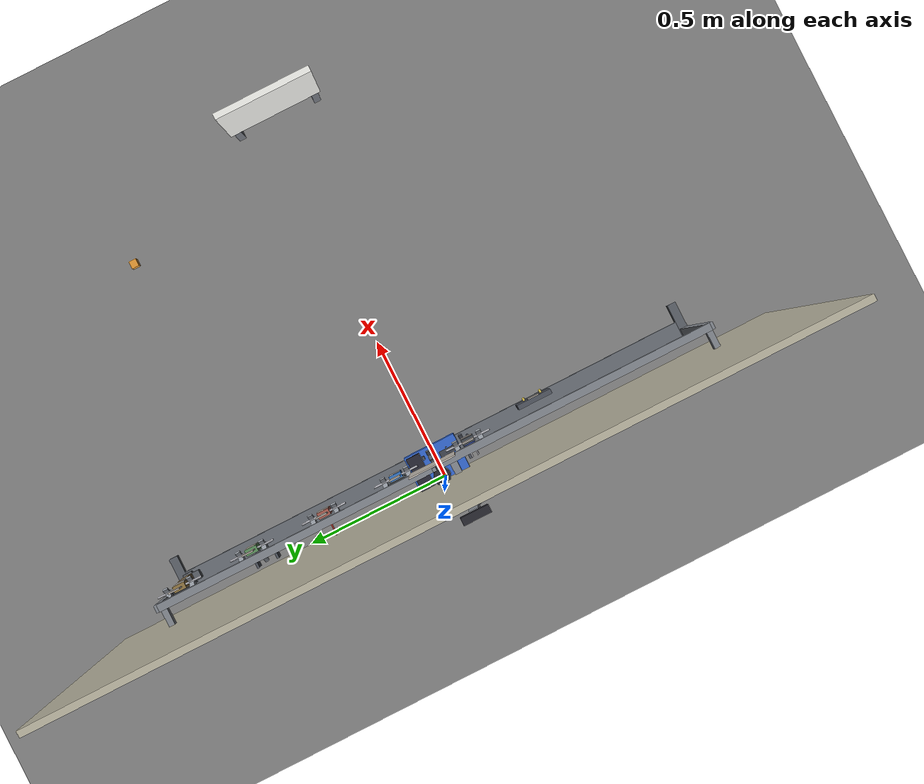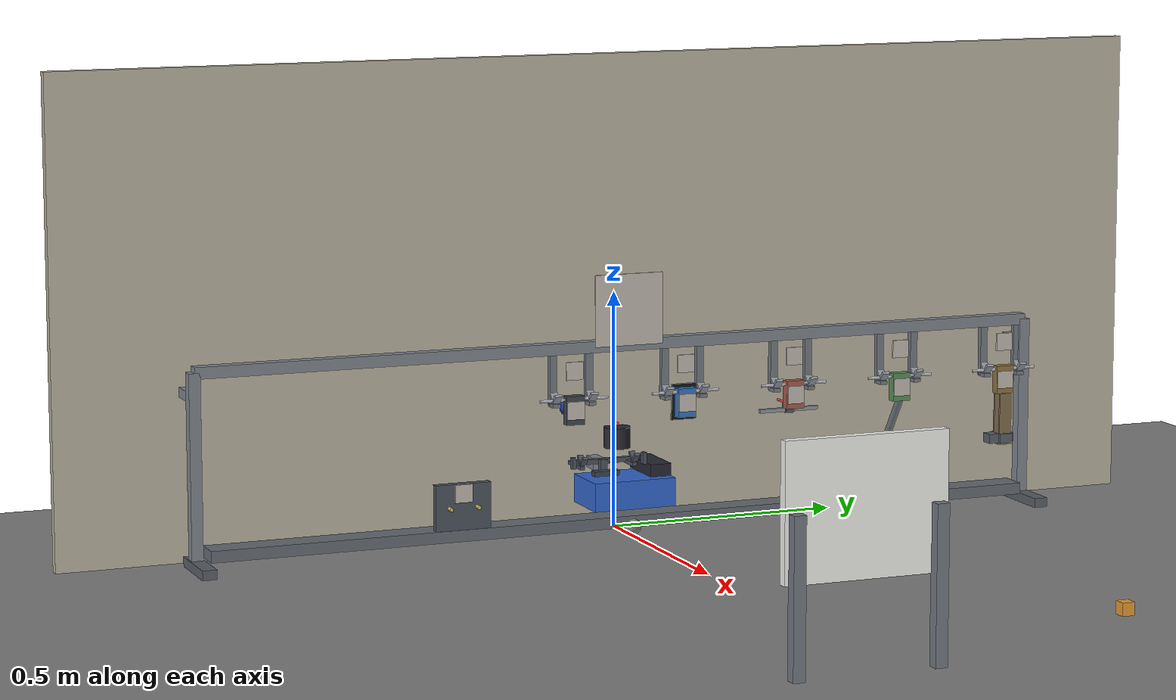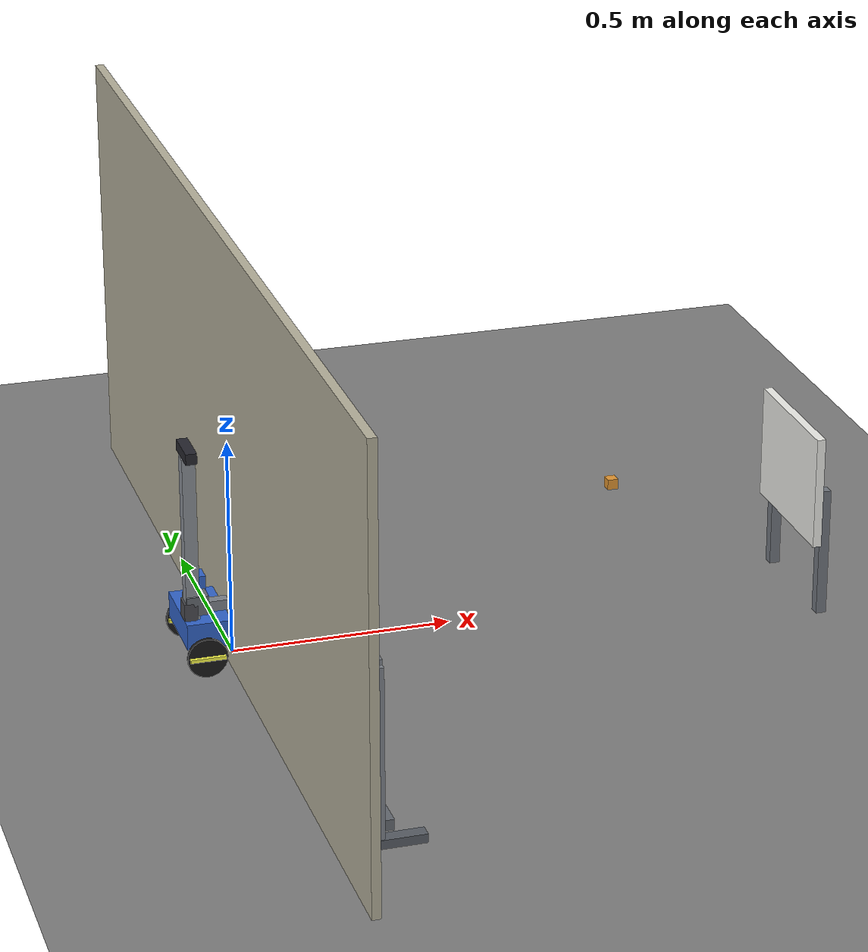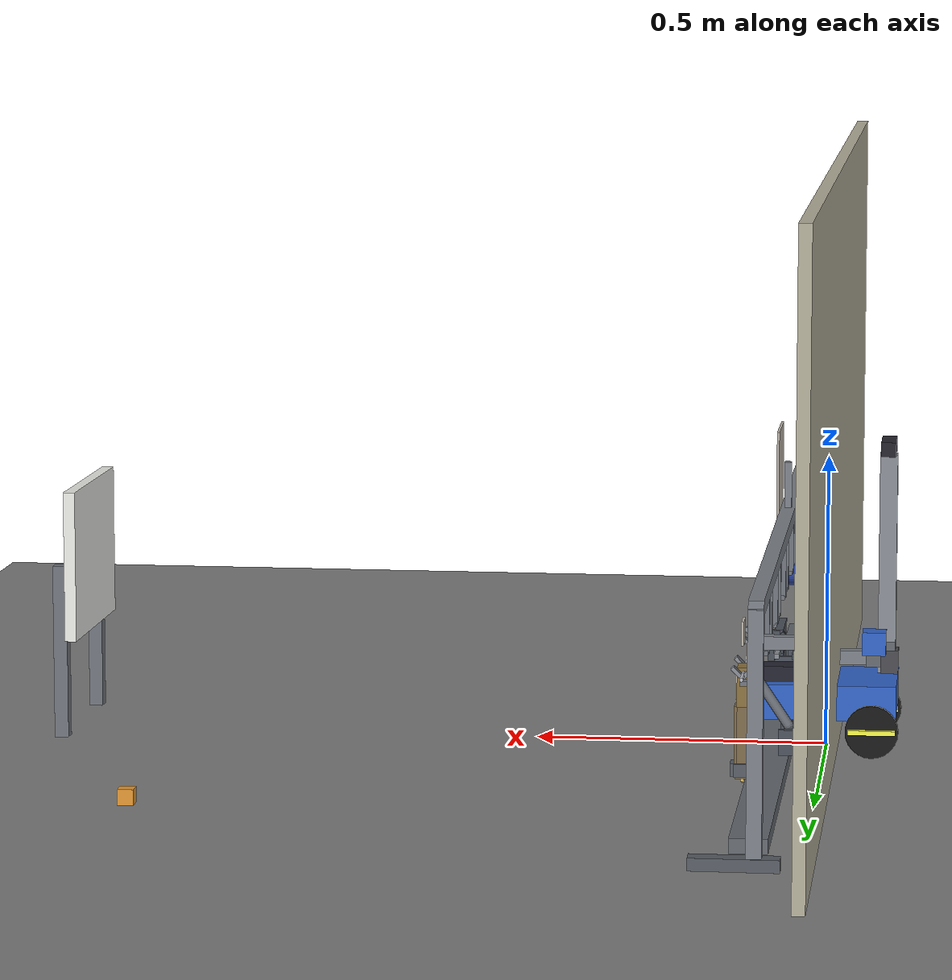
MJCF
<mujoco model="hub_world">
  <option timestep="0.001" integrator="implicitfast"/>
  <include file="pluggybot_fork.xml"/>
  <asset>
    <texture name="tagtex0" type="cube" file="tags/tag0.png"/>
    <material name="tagmat0" texture="tagtex0" specular="0.05" shininess="0.05" reflectance="0"/>
    <texture name="tagtex3" type="cube" file="tags/tag3.png"/>
    <material name="tagmat3" texture="tagtex3" specular="0.05" shininess="0.05" reflectance="0"/>
    <texture name="tagtex1" type="cube" file="tags/tag1.png"/>
    <material name="tagmat1" texture="tagtex1" specular="0.05" shininess="0.05" reflectance="0"/>
    <texture name="tagtex2" type="cube" file="tags/tag2.png"/>
    <material name="tagmat2" texture="tagtex2" specular="0.05" shininess="0.05" reflectance="0"/>
    <texture name="tagtex4" type="cube" file="tags/tag4.png"/>
    <material name="tagmat4" texture="tagtex4" specular="0.05" shininess="0.05" reflectance="0"/>
    <texture name="tagtex5" type="cube" file="tags/tag5.png"/>
    <material name="tagmat5" texture="tagtex5" specular="0.05" shininess="0.05" reflectance="0"/>
    <texture name="tagtex6" type="cube" file="tags/tag6.png"/>
    <material name="tagmat6" texture="tagtex6" specular="0.05" shininess="0.05" reflectance="0"/>
    <texture name="tagtex7" type="cube" file="tags/tag7.png"/>
    <material name="tagmat7" texture="tagtex7" specular="0.05" shininess="0.05" reflectance="0"/>
    <texture name="tagtex8" type="cube" file="tags/tag8.png"/>
    <material name="tagmat8" texture="tagtex8" specular="0.05" shininess="0.05" reflectance="0"/>
    <texture name="tagtex9" type="cube" file="tags/tag9.png"/>
    <material name="tagmat9" texture="tagtex9" specular="0.05" shininess="0.05" reflectance="0"/>
    <texture name="tagtex10" type="cube" file="tags/tag10.png"/>
    <material name="tagmat10" texture="tagtex10" specular="0.05" shininess="0.05" reflectance="0"/>
    <texture name="tagtex11" type="cube" file="tags/tag11.png"/>
    <material name="tagmat11" texture="tagtex11" specular="0.05" shininess="0.05" reflectance="0"/>
    <texture name="tagtex12" type="cube" file="tags/tag12.png"/>
    <material name="tagmat12" texture="tagtex12" specular="0.05" shininess="0.05" reflectance="0"/>
    <texture name="tagtex13" type="cube" file="tags/tag13.png"/>
    <material name="tagmat13" texture="tagtex13" specular="0.05" shininess="0.05" reflectance="0"/>
    <texture name="tagtex14" type="cube" file="tags/tag14.png"/>
    <material name="tagmat14" texture="tagtex14" specular="0.05" shininess="0.05" reflectance="0"/>
  </asset>
  <worldbody>
    <light pos="0 0 3" dir="0 0 -1"/>
    <light pos="1.5 0 1.5" dir="-0.7 0 -0.7"/>
    <geom name="floor" type="plane" size="5 5 0.1" rgba="0.5 0.5 0.5 1"/>
    <geom name="wall" type="box" size="0.01 1.2 0.5" pos="-0.01 0 0.5"
          rgba="0.72 0.70 0.62 1"/>

    <geom name="board" type="box"
          size="0.01 0.16 0.13"
          pos="1.3 -0.05 0.3" friction="0.25" priority="1"
          rgba="0.95 0.95 0.93 1"/>
    <geom name="board_leg_l" type="box" size="0.012 0.012 0.150"
          pos="1.32 0.09 0.150"
          rgba="0.45 0.47 0.50 1"/>
    <geom name="board_leg_r" type="box" size="0.012 0.012 0.150"
          pos="1.32 -0.19000000000000003 0.150"
          rgba="0.45 0.47 0.50 1"/>

    <body name="rack" pos="0.0000 0.0000 0.0000" euler="0 0 0.0">
      <freejoint/>
      <geom name="rack_post_l" type="box" size="0.012 0.012 0.200"
            pos="0.0700 0.9300 0.200"
            mass="0.15" rgba="0.50 0.52 0.55 1"/>
      <geom name="rack_post_r" type="box" size="0.012 0.012 0.200"
            pos="0.0700 -0.9300 0.200"
            mass="0.15" rgba="0.50 0.52 0.55 1"/>
      <geom name="rack_rail" type="box" size="0.012 0.930 0.012"
            pos="0.0700 0 0.400" mass="0.20"
            rgba="0.50 0.52 0.55 1"/>
      <geom name="rack_foot_l" type="box" size="0.070 0.015 0.010"
            pos="0.10 0.9300 0.010" mass="0.10" friction="1.0"
            rgba="0.35 0.37 0.40 1"/>
      <geom name="rack_foot_r" type="box" size="0.070 0.015 0.010"
            pos="0.10 -0.9300 0.010" mass="0.10" friction="1.0"
            rgba="0.35 0.37 0.40 1"/>
      <geom name="rack_shelf" type="box" size="0.030 0.910 0.012"
            pos="0.08 0 0.032" mass="1.50" rgba="0.40 0.42 0.45 1"/>
      <geom name="rack_brace_l" type="box" size="0.0350 0.010 0.010"
            pos="0.0350 0.9300 0.35" mass="0.05"
            rgba="0.50 0.52 0.55 1"/>
      <geom name="rack_brace_r" type="box" size="0.0350 0.010 0.010"
            pos="0.0350 -0.9300 0.35" mass="0.05"
            rgba="0.50 0.52 0.55 1"/>
      <geom name="rack_tag" type="box"
            size="0.002 0.0750 0.0750"
            pos="0.0840 0 0.475"
            contype="0" conaffinity="0" material="tagmat0"/>
      <geom name="rack_tag_mast" type="box" size="0.006 0.006 0.045"
            pos="0.0700 0 0.445" mass="0.02"
            rgba="0.50 0.52 0.55 1"/>
            <geom name="baya_col_l" type="box" size="0.006 0.008 0.0585" pos="0.0700 0.1650 0.3415" rgba="0.45 0.47 0.50 1"/>
      <geom name="baya_foot_l" type="box" size="0.014 0.008 0.004" pos="0.0800 0.1650 0.284" rgba="0.45 0.47 0.50 1"/>
      <geom name="baya_tray_l_a" type="box" size="0.0110 0.0080 0.0030" pos="0.0822 0.1650 0.2998" euler="0 45 0" rgba="0.55 0.57 0.60 1"/>
      <geom name="baya_tray_l_b" type="box" size="0.0110 0.0080 0.0030" pos="0.0978 0.1650 0.2998" euler="0 -45 0" rgba="0.55 0.57 0.60 1"/>
      <geom name="baya_col_r" type="box" size="0.006 0.008 0.0585" pos="0.0700 0.0850 0.3415" rgba="0.45 0.47 0.50 1"/>
      <geom name="baya_foot_r" type="box" size="0.014 0.008 0.004" pos="0.0800 0.0850 0.284" rgba="0.45 0.47 0.50 1"/>
      <geom name="baya_tray_r_a" type="box" size="0.0110 0.0080 0.0030" pos="0.0822 0.0850 0.2998" euler="0 45 0" rgba="0.55 0.57 0.60 1"/>
      <geom name="baya_tray_r_b" type="box" size="0.0110 0.0080 0.0030" pos="0.0978 0.0850 0.2998" euler="0 -45 0" rgba="0.55 0.57 0.60 1"/>
      <geom name="baya_bay_tag" type="box" size="0.002 0.0187 0.0187" pos="0.0920 0.1250 0.3550" contype="0" conaffinity="0" material="tagmat1"/>
      <geom name="bayb_col_l" type="box" size="0.006 0.008 0.0585" pos="0.0700 -0.0850 0.3415" rgba="0.45 0.47 0.50 1"/>
      <geom name="bayb_foot_l" type="box" size="0.014 0.008 0.004" pos="0.0800 -0.0850 0.284" rgba="0.45 0.47 0.50 1"/>
      <geom name="bayb_tray_l_a" type="box" size="0.0110 0.0080 0.0030" pos="0.0822 -0.0850 0.2998" euler="0 45 0" rgba="0.55 0.57 0.60 1"/>
      <geom name="bayb_tray_l_b" type="box" size="0.0110 0.0080 0.0030" pos="0.0978 -0.0850 0.2998" euler="0 -45 0" rgba="0.55 0.57 0.60 1"/>
      <geom name="bayb_col_r" type="box" size="0.006 0.008 0.0585" pos="0.0700 -0.1650 0.3415" rgba="0.45 0.47 0.50 1"/>
      <geom name="bayb_foot_r" type="box" size="0.014 0.008 0.004" pos="0.0800 -0.1650 0.284" rgba="0.45 0.47 0.50 1"/>
      <geom name="bayb_tray_r_a" type="box" size="0.0110 0.0080 0.0030" pos="0.0822 -0.1650 0.2998" euler="0 45 0" rgba="0.55 0.57 0.60 1"/>
      <geom name="bayb_tray_r_b" type="box" size="0.0110 0.0080 0.0030" pos="0.0978 -0.1650 0.2998" euler="0 -45 0" rgba="0.55 0.57 0.60 1"/>
      <geom name="bayb_bay_tag" type="box" size="0.002 0.0187 0.0187" pos="0.0920 -0.1250 0.3550" contype="0" conaffinity="0" material="tagmat2"/>
      <geom name="bayc_col_l" type="box" size="0.006 0.008 0.0585" pos="0.0700 0.4150 0.3415" rgba="0.45 0.47 0.50 1"/>
      <geom name="bayc_foot_l" type="box" size="0.014 0.008 0.004" pos="0.0800 0.4150 0.284" rgba="0.45 0.47 0.50 1"/>
      <geom name="bayc_tray_l_a" type="box" size="0.0110 0.0080 0.0030" pos="0.0822 0.4150 0.2998" euler="0 45 0" rgba="0.55 0.57 0.60 1"/>
      <geom name="bayc_tray_l_b" type="box" size="0.0110 0.0080 0.0030" pos="0.0978 0.4150 0.2998" euler="0 -45 0" rgba="0.55 0.57 0.60 1"/>
      <geom name="bayc_col_r" type="box" size="0.006 0.008 0.0585" pos="0.0700 0.3350 0.3415" rgba="0.45 0.47 0.50 1"/>
      <geom name="bayc_foot_r" type="box" size="0.014 0.008 0.004" pos="0.0800 0.3350 0.284" rgba="0.45 0.47 0.50 1"/>
      <geom name="bayc_tray_r_a" type="box" size="0.0110 0.0080 0.0030" pos="0.0822 0.3350 0.2998" euler="0 45 0" rgba="0.55 0.57 0.60 1"/>
      <geom name="bayc_tray_r_b" type="box" size="0.0110 0.0080 0.0030" pos="0.0978 0.3350 0.2998" euler="0 -45 0" rgba="0.55 0.57 0.60 1"/>
      <geom name="bayc_bay_tag" type="box" size="0.002 0.0187 0.0187" pos="0.0920 0.3750 0.3550" contype="0" conaffinity="0" material="tagmat4"/>
      <geom name="bayd_col_l" type="box" size="0.006 0.008 0.0585" pos="0.0700 0.6650 0.3415" rgba="0.45 0.47 0.50 1"/>
      <geom name="bayd_foot_l" type="box" size="0.014 0.008 0.004" pos="0.0800 0.6650 0.284" rgba="0.45 0.47 0.50 1"/>
      <geom name="bayd_tray_l_a" type="box" size="0.0110 0.0080 0.0030" pos="0.0822 0.6650 0.2998" euler="0 45 0" rgba="0.55 0.57 0.60 1"/>
      <geom name="bayd_tray_l_b" type="box" size="0.0110 0.0080 0.0030" pos="0.0978 0.6650 0.2998" euler="0 -45 0" rgba="0.55 0.57 0.60 1"/>
      <geom name="bayd_col_r" type="box" size="0.006 0.008 0.0585" pos="0.0700 0.5850 0.3415" rgba="0.45 0.47 0.50 1"/>
      <geom name="bayd_foot_r" type="box" size="0.014 0.008 0.004" pos="0.0800 0.5850 0.284" rgba="0.45 0.47 0.50 1"/>
      <geom name="bayd_tray_r_a" type="box" size="0.0110 0.0080 0.0030" pos="0.0822 0.5850 0.2998" euler="0 45 0" rgba="0.55 0.57 0.60 1"/>
      <geom name="bayd_tray_r_b" type="box" size="0.0110 0.0080 0.0030" pos="0.0978 0.5850 0.2998" euler="0 -45 0" rgba="0.55 0.57 0.60 1"/>
      <geom name="bayd_bay_tag" type="box" size="0.002 0.0187 0.0187" pos="0.0920 0.6250 0.3550" contype="0" conaffinity="0" material="tagmat5"/>
      <geom name="baye_col_l" type="box" size="0.006 0.008 0.0585" pos="0.0700 0.9150 0.3415" rgba="0.45 0.47 0.50 1"/>
      <geom name="baye_foot_l" type="box" size="0.014 0.008 0.004" pos="0.0800 0.9150 0.284" rgba="0.45 0.47 0.50 1"/>
      <geom name="baye_tray_l_a" type="box" size="0.0110 0.0080 0.0030" pos="0.0822 0.9150 0.2998" euler="0 45 0" rgba="0.55 0.57 0.60 1"/>
      <geom name="baye_tray_l_b" type="box" size="0.0110 0.0080 0.0030" pos="0.0978 0.9150 0.2998" euler="0 -45 0" rgba="0.55 0.57 0.60 1"/>
      <geom name="baye_col_r" type="box" size="0.006 0.008 0.0585" pos="0.0700 0.8350 0.3415" rgba="0.45 0.47 0.50 1"/>
      <geom name="baye_foot_r" type="box" size="0.014 0.008 0.004" pos="0.0800 0.8350 0.284" rgba="0.45 0.47 0.50 1"/>
      <geom name="baye_tray_r_a" type="box" size="0.0110 0.0080 0.0030" pos="0.0822 0.8350 0.2998" euler="0 45 0" rgba="0.55 0.57 0.60 1"/>
      <geom name="baye_tray_r_b" type="box" size="0.0110 0.0080 0.0030" pos="0.0978 0.8350 0.2998" euler="0 -45 0" rgba="0.55 0.57 0.60 1"/>
      <geom name="baye_bay_tag" type="box" size="0.002 0.0187 0.0187" pos="0.0920 0.8750 0.3550" contype="0" conaffinity="0" material="tagmat6"/>
      <!-- charge bay: panel + two pogo pins at bumper height + its own tag
           (the terminal servo needs a mark here like anywhere else) -->
      <geom name="rack_charge_panel" type="box" size="0.008 0.06 0.05"
            pos="0.10 -0.3750 0.090" mass="0.10"
            rgba="0.30 0.32 0.36 1"/>
      <geom name="rack_charge_tag" type="box"
            size="0.002 0.0187 0.0187"
            pos="0.109 -0.3750 0.120"
            contype="0" conaffinity="0" material="tagmat3"/>
      <geom name="rack_pin_l" type="cylinder" size="0.004 0.006" zaxis="1 0 0"
            pos="0.114 -0.3450 0.090" mass="0.005"
            rgba="0.85 0.75 0.30 1"/>
      <geom name="rack_pin_r" type="cylinder" size="0.004 0.006" zaxis="1 0 0"
            pos="0.114 -0.4050 0.090" mass="0.005"
            rgba="0.85 0.75 0.30 1"/>
    </body>

    <body name="module_lcd" pos="0.0900 0.1250 0.2730" euler="0 0 0.0">
      <freejoint/>
      <geom name="module_lcd_body" type="box"
            size="0.01 0.02 0.03"
            mass="0.100" rgba="0.20 0.45 0.75 1"/>
      <geom name="module_lcd_peg_l" type="cylinder" size="0.003 0.0315" zaxis="0 1 0" pos="0 0.0435 0.0220" mass="0.008" friction="0.4" priority="1" rgba="0.75 0.75 0.78 1"/>
      <geom name="module_lcd_peg_r" type="cylinder" size="0.003 0.0315" zaxis="0 1 0" pos="0 -0.0435 0.0220" mass="0.008" friction="0.4" priority="1" rgba="0.75 0.75 0.78 1"/>
      <geom name="module_lcd_peg_insul" type="cylinder" size="0.003 0.0120" zaxis="0 1 0" pos="0 0 0.0220" mass="0.004" rgba="0.12 0.12 0.14 1"/>
      <geom name="module_lcd_screen" type="box" size="0.002 0.028 0.038" pos="-0.0100 0 0" contype="0" conaffinity="0" rgba="0.05 0.08 0.10 1"/>
      <geom name="module_lcd_tag" type="box" size="0.002 0.0187 0.0187" pos="0.0100 0 0" contype="0" conaffinity="0" material="tagmat10"/>
    </body>

    <body name="module_plug" pos="0.0900 -0.1250 0.2730" euler="0 0 0.0">
      <freejoint/>
      <geom name="module_plug_body" type="box"
            size="0.01 0.02 0.03"
            mass="0.100" rgba="0.25 0.27 0.30 1"/>
      <geom name="module_plug_peg_l" type="cylinder" size="0.003 0.0315" zaxis="0 1 0" pos="0 0.0435 0.0220" mass="0.008" friction="0.4" priority="1" rgba="0.75 0.75 0.78 1"/>
      <geom name="module_plug_peg_r" type="cylinder" size="0.003 0.0315" zaxis="0 1 0" pos="0 -0.0435 0.0220" mass="0.008" friction="0.4" priority="1" rgba="0.75 0.75 0.78 1"/>
      <geom name="module_plug_peg_insul" type="cylinder" size="0.003 0.0120" zaxis="0 1 0" pos="0 0 0.0220" mass="0.004" rgba="0.12 0.12 0.14 1"/>
      <geom name="module_plug_barrel" type="cylinder" size="0.01775 0.015" zaxis="1 0 0" pos="-0.0230 0 0" contype="0" conaffinity="0" rgba="0.15 0.25 0.6 1"/>
      <geom name="module_plug_pin_l" type="capsule" size="0.0024" fromto="-0.0380 0.0095 0 -0.0540 0.0095 0" contype="0" conaffinity="0" rgba="0.75 0.75 0.78 1"/>
      <geom name="module_plug_pin_r" type="capsule" size="0.0024" fromto="-0.0380 -0.0095 0 -0.0540 -0.0095 0" contype="0" conaffinity="0" rgba="0.75 0.75 0.78 1"/>
      <geom name="module_plug_tag" type="box" size="0.002 0.0187 0.0187" pos="0.0100 0 0" contype="0" conaffinity="0" material="tagmat11"/>
    </body>

    <body name="module_pen" pos="0.0900 0.3750 0.2730" euler="0 0 0.0">
      <freejoint/>
      <geom name="module_pen_body" type="box"
            size="0.01 0.02 0.03"
            mass="0.100" rgba="0.65 0.35 0.30 1"/>
      <geom name="module_pen_peg_l" type="cylinder" size="0.003 0.0315" zaxis="0 1 0" pos="0 0.0435 0.0220" mass="0.008" friction="0.4" priority="1" rgba="0.75 0.75 0.78 1"/>
      <geom name="module_pen_peg_r" type="cylinder" size="0.003 0.0315" zaxis="0 1 0" pos="0 -0.0435 0.0220" mass="0.008" friction="0.4" priority="1" rgba="0.75 0.75 0.78 1"/>
      <geom name="module_pen_peg_insul" type="cylinder" size="0.003 0.0120" zaxis="0 1 0" pos="0 0 0.0220" mass="0.004" rgba="0.12 0.12 0.14 1"/>
      <geom name="module_pen_rail" type="box" size="0.004 0.0670 0.004" pos="-0.0260 0 -0.0370" mass="0.02" rgba="0.55 0.57 0.60 1"/>
      <geom name="module_pen_tag" type="box" size="0.002 0.0187 0.0187" pos="0.0100 0 0" contype="0" conaffinity="0" material="tagmat12"/>
      <body name="module_pen_carriage" pos="-0.0260 0 -0.0370">
        <joint name="pen_carriage_joint" type="slide" axis="0 1 0" range="-0.0550 0.0550" damping="2"/>
        <geom name="module_pen_block" type="box" size="0.008 0.010 0.0110" pos="0 0 0.0050" mass="0.03" rgba="0.30 0.32 0.36 1"/>
        <body name="module_pen_quill" pos="0 0 0.0120">
          <joint name="pen_quill_joint" type="slide" axis="1 0 0" range="0 0.0200" stiffness="60.0" damping="2" armature="1e-6"/>
          <geom name="module_pen_shaft" type="capsule" size="0.0025" fromto="-0.008 0 0 -0.0530 0 0" mass="0.006" friction="0.25" priority="1" solimp="0.99 0.999 0.0001" rgba="0.90 0.30 0.25 1"/>
          <site name="pen_tip" pos="-0.0530 0 0" size="0.002" rgba="0.9 0.3 0.25 1"/>
        </body>
      </body>
    </body>

    <body name="module_claw" pos="0.0900 0.6250 0.2730" euler="0 0 0.0">
      <freejoint/>
      <geom name="module_claw_body" type="box"
            size="0.01 0.02 0.03"
            mass="0.100" rgba="0.35 0.55 0.35 1"/>
      <geom name="module_claw_peg_l" type="cylinder" size="0.003 0.0315" zaxis="0 1 0" pos="0 0.0435 0.0220" mass="0.008" friction="0.4" priority="1" rgba="0.75 0.75 0.78 1"/>
      <geom name="module_claw_peg_r" type="cylinder" size="0.003 0.0315" zaxis="0 1 0" pos="0 -0.0435 0.0220" mass="0.008" friction="0.4" priority="1" rgba="0.75 0.75 0.78 1"/>
      <geom name="module_claw_peg_insul" type="cylinder" size="0.003 0.0120" zaxis="0 1 0" pos="0 0 0.0220" mass="0.004" rgba="0.12 0.12 0.14 1"/>
      <geom name="module_claw_pendant" type="capsule" size="0.008" fromto="0 0 -0.0300 -0.0550 0 -0.1120" mass="0.045" rgba="0.45 0.47 0.50 1"/>
      <camera name="claw_eye" pos="-0.0330 0.0300 -0.0790" xyaxes="-0.8064 0.5914 0.0000 -0.4840 -0.6600 0.5745" fovy="58"/>
      <geom name="module_claw_tag" type="box" size="0.002 0.0187 0.0187" pos="0.0100 0 0" contype="0" conaffinity="0" material="tagmat13"/>
      <body name="module_claw_jaw_l" pos="-0.0550 0.0350 -0.1320">
        <joint name="claw_l" type="slide" axis="0 1 0" range="-0.0270 0" damping="1"/>
        <geom name="module_claw_pad_l" type="box" size="0.014 0.004 0.0200" mass="0.020" friction="1.5" priority="1" solimp="0.99 0.999 0.0001" rgba="0.30 0.32 0.36 1"/>
      </body>
      <body name="module_claw_jaw_r" pos="-0.0550 -0.0350 -0.1320">
        <joint name="claw_r" type="slide" axis="0 -1 0" range="-0.0270 0" damping="1"/>
        <geom name="module_claw_pad_r" type="box" size="0.014 0.004 0.0200" mass="0.020" friction="1.5" priority="1" solimp="0.99 0.999 0.0001" rgba="0.30 0.32 0.36 1"/>
      </body>
      <site name="claw_grip" pos="-0.0550 0 -0.1320" size="0.003" rgba="0.9 0.6 0.2 1"/>
    </body>

    <body name="module_seed" pos="0.0900 0.8750 0.2730" euler="0 0 0.0">
      <freejoint/>
      <geom name="module_seed_body" type="box"
            size="0.01 0.02 0.03"
            mass="0.100" rgba="0.55 0.45 0.25 1"/>
      <geom name="module_seed_peg_l" type="cylinder" size="0.003 0.0315" zaxis="0 1 0" pos="0 0.0435 0.0220" mass="0.008" friction="0.4" priority="1" rgba="0.75 0.75 0.78 1"/>
      <geom name="module_seed_peg_r" type="cylinder" size="0.003 0.0315" zaxis="0 1 0" pos="0 -0.0435 0.0220" mass="0.008" friction="0.4" priority="1" rgba="0.75 0.75 0.78 1"/>
      <geom name="module_seed_peg_insul" type="cylinder" size="0.003 0.0120" zaxis="0 1 0" pos="0 0 0.0220" mass="0.004" rgba="0.12 0.12 0.14 1"/>
      <geom name="module_seed_tag" type="box" size="0.002 0.0187 0.0187" pos="0.0100 0 0" contype="0" conaffinity="0" material="tagmat14"/>
      <geom name="module_seed_tube_px" type="box" size="0.0020 0.0140 0.0440" pos="0.0120 0.0000 -0.0740" mass="0.008" rgba="0.50 0.42 0.30 1"/>
      <geom name="module_seed_tube_nx" type="box" size="0.0020 0.0140 0.0440" pos="-0.0120 0.0000 -0.0740" mass="0.008" rgba="0.50 0.42 0.30 1"/>
      <geom name="module_seed_tube_py" type="box" size="0.0100 0.0020 0.0440" pos="0.0000 0.0120 -0.0740" mass="0.008" rgba="0.50 0.42 0.30 1"/>
      <geom name="module_seed_tube_ny" type="box" size="0.0100 0.0020 0.0440" pos="0.0000 -0.0120 -0.0740" mass="0.008" rgba="0.50 0.42 0.30 1"/>
      <geom name="module_seed_shelf" type="box" size="0.0120 0.0130 0.0020" pos="0 -0.0010 -0.1405" mass="0.006" friction="0.3" priority="1" rgba="0.50 0.42 0.30 1"/>
      <site name="seed_outlet" pos="0 0.0220 -0.1425" size="0.003" rgba="0.85 0.72 0.35 1"/>
      <body name="module_seed_shuttle" pos="0 0 -0.1280">
        <joint name="seed_gate_joint" type="slide" axis="0 1 0" range="0 0.0240" damping="1"/>
        <geom name="module_seed_blank" type="box" size="0.0140 0.0140 0.0100" pos="0 -0.0240 0" mass="0.010" rgba="0.35 0.37 0.40 1"/>
        <geom name="module_seed_pocket_py" type="box" size="0.0140 0.0050 0.0100" pos="0.0000 0.0150 0" mass="0.004" rgba="0.35 0.37 0.40 1"/>
        <geom name="module_seed_pocket_px" type="box" size="0.0050 0.0150 0.0100" pos="0.0150 0.0000 0" mass="0.004" rgba="0.35 0.37 0.40 1"/>
        <geom name="module_seed_pocket_nx" type="box" size="0.0050 0.0150 0.0100" pos="-0.0150 0.0000 0" mass="0.004" rgba="0.35 0.37 0.40 1"/>
      </body>
    </body>

    <body name="seed_0" pos="0.0900 0.8750 0.1440">
      <freejoint/>
      <geom name="seed_0_body" type="sphere" size="0.008" mass="0.004" condim="6" friction="0.9 0.02 0.005" priority="1" rgba="0.85 0.72 0.35 1"/>
    </body>
    <body name="seed_1" pos="0.0900 0.8750 0.1610">
      <freejoint/>
      <geom name="seed_1_body" type="sphere" size="0.008" mass="0.004" condim="6" friction="0.9 0.02 0.005" priority="1" rgba="0.85 0.72 0.35 1"/>
    </body>
    <body name="seed_2" pos="0.0900 0.8750 0.1780">
      <freejoint/>
      <geom name="seed_2_body" type="sphere" size="0.008" mass="0.004" condim="6" friction="0.9 0.02 0.005" priority="1" rgba="0.85 0.72 0.35 1"/>
    </body>

    <!-- Something to pick up. A 26 mm, 60 g block on open floor: small enough
         for a 70 mm jaw span, heavy enough that dropping it is visible. -->
    <body name="pickup" pos="1.10 0.60 0.013">
      <freejoint/>
      <geom name="pickup_box" type="box" size="0.013 0.013 0.013" mass="0.06"
            friction="1.2" rgba="0.90 0.60 0.20 1"/>
    </body>
    <camera name="hub_watch" pos="0.85 -0.85 0.70"
            xyaxes="0.707 0.707 0 -0.32 0.32 0.89"/>
  </worldbody>
  <actuator>
    <position name="pen_carriage" joint="pen_carriage_joint" kp="2000" kv="80" ctrlrange="-0.0550 0.0550" forcerange="-15 15"/>
    <position name="claw_l" joint="claw_l" kp="600.0" kv="6" ctrlrange="-0.0270 0" forcerange="-20 20"/>
    <position name="claw_r" joint="claw_r" kp="600.0" kv="6" ctrlrange="-0.0270 0" forcerange="-20 20"/>
    <position name="seed_gate" joint="seed_gate_joint" kp="800.0" kv="12" ctrlrange="0 0.0240" forcerange="-20 20"/>
  </actuator>
</mujoco>

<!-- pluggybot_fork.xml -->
<mujocoinclude>
  <visual>
    <global offwidth="1280" offheight="720"/>
    <quality offsamples="0"/>
  </visual>

  <worldbody>

    <!-- origin at axle height (aka wheel radius) -->
    <body name="pluggybot" pos="0 0 0.045">
      <freejoint />

      <!-- For the gyroscope  -->
      <site name="imu" pos="0 0 0.05"/>

      <geom
        name="chassis"
        type="box"
        size="0.12 0.09 0.03"
        pos="0 0 0.045"
        mass="0.9"
        rgba="0.2 0.4 0.8 1"
      />

      <geom
        name="battery"
        type="box"
        size="0.065 0.023 0.013"
        pos="0.05 0.06 0.092"
        mass="0.40"
        rgba="0.15 0.15 0.2 1"
      />

      <!--  Head  -->
      <body name="head" pos="-0.08 0 0.135">
        <geom
          name="head_mount"
          type="box"
          size="0.02 0.02 0.02"
          pos="0 0 0"
          mass="0.12"
          rgba="0.2 0.4 0.8 1"
        />

        <!--  Cameras  -->
        <!--  Decoding xyaxes="0 -1 0  0 0 1":
                image-right is body −y, image-up is body +z,
                which forces the viewing direction to be body +x
        -->
        <camera name="left_eye" pos="0.03 0.03 0" xyaxes="0 -1 0 0 0 1" fovy="41"/>

      </body>

      <geom name="lidar_body" type="cylinder" size="0.028 0.022"
            pos="0.02 0 0.150" mass="0.11" rgba="0.15 0.15 0.18 1"/>
      <site name="lidar" pos="0.02 0 0.178" size="0.004"
            rgba="0.9 0.2 0.2 1"/>

      <body name="left_wheel" pos="-0.08 0.105 0">
        <joint
          name="left_wheel_joint"
          type="hinge"
          axis="0 1 0"
          armature="0.012"
          damping="0.05"
          frictionloss="0.05"
        />
        <geom
          name="left_tire"
          type="cylinder"
          size="0.045 0.005"
          zaxis="0 1 0"
          mass="0.05"
          rgba="0.1 0.1 0.1 1"
        />
        <!-- Spoke - purely visual, to see rotation  -->
        <geom
          type="box"
          size="0.04 0.013 0.004"
          mass="0.001"
          contype="0"
          conaffinity="0"
          rgba="1 1 0.3 1"
        />
      </body>

      <body name="right_wheel" pos="-0.08 -0.105 0">
        <joint
          name="right_wheel_joint"
          type="hinge"
          axis="0 1 0"
          armature="0.012"
          damping="0.05"
          frictionloss="0.05"
        />
        <!-- frictionloss: the parking brake -- see left_wheel_joint. -->
        <geom
          name="right_tire"
          type="cylinder"
          size="0.045 0.005"
          zaxis="0 1 0"
          mass="0.05"
          rgba="0.1 0.1 0.1 1"
        />
        <!-- Spoke - purely visual, to see rotation  -->
        <geom
          type="box"
          size="0.04 0.013 0.004"
          mass="0.001"
          contype="0"
          conaffinity="0"
          rgba="1 1 0.3 1"
        />
      </body>

      <geom
        name="caster"
        type="sphere"
        size="0.02"
        pos="0.10 0 -0.025"
        mass="0.02"
        condim="1"
        priority="1"
      />

      <!-- Mast: fixed column + lift motor block at its foot (igus NEMA11
           lead-screw class). Column top at body-local z=0.455. TBD masses. -->
      <geom name="mast" type="box" size="0.015 0.015 0.19"
            pos="-0.10 -0.05 0.265" mass="0.20" rgba="0.55 0.57 0.6 1"/>
      <geom name="lift_motor" type="box" size="0.015 0.02 0.02"
            pos="-0.105 -0.05 0.095" mass="0.15" rgba="0.3 0.3 0.32 1"/>

      <geom name="depth_cam_body" type="box" size="0.0125 0.045 0.0125"
            pos="-0.10 -0.05 0.4675" mass="0.072" rgba="0.15 0.15 0.18 1"/>
      <camera name="depth_eye" pos="-0.086 -0.05 0.4675"
              xyaxes="0 -1 0  0.6428 0 0.7660" fovy="58"/>

      <body name="carriage" pos="-0.10 -0.05 0.10">
        <joint name="lift_joint" type="slide" axis="0 0 1" range="0 0.31"
               damping="10"/>
        <geom name="carriage_block" type="box" size="0.025 0.02 0.022"
              pos="0.01 0 0.008" mass="0.25" rgba="0.4 0.42 0.45 1"/>

        <camera name="dock_eye" pos="0.03 0 0.06" xyaxes="0 -1 0 0 0 1" fovy="41"/>

        <!-- Telescoping arm: short tube, 0.20 m stroke. Retracted, the plug
             tip sits at body-local +0.059 — safely behind the +0.12 bumper. -->
        <body name="arm" pos="0 0 0">
          <joint name="arm_joint" type="slide" axis="1 0 0" range="0 0.20"
                 damping="5"/>
          <geom name="arm_tube" type="box" size="0.06 0.012 0.012"
                pos="0.08 0 0" mass="0.12" rgba="0.5 0.52 0.55 1"/>

          <body name="tool_fork" pos="0.14 0 0.019" euler="0 0 180">
            <joint name="fork_lat_y" type="slide" axis="0 1 0" range="-0.02 0.02"
                   stiffness="150" damping="4" armature="1e-5"/>
            <joint name="fork_lat_z" type="slide" axis="0 0 1" range="-0.02 0.02"
                   stiffness="150" damping="4" armature="1e-5"/>
            <joint name="fork_rot_z" type="hinge" axis="0 0 1" range="-0.35 0.35"
                   stiffness="1.0" damping="0.05" armature="1e-5"/>
            <joint name="fork_rot_y" type="hinge" axis="0 1 0" range="-0.35 0.35"
                   stiffness="1.0" damping="0.05" armature="1e-5"/>
            <geom name="fork_bridge" type="box" size="0.006 0.064 0.005"
                  pos="-0.014 0 -0.010" mass="0.020" rgba="0.30 0.32 0.36 1"/>
            <geom name="fork_prong_l" type="box" size="0.035 0.005 0.004"
                  pos="-0.020 0.058 -0.014" mass="0.008" rgba="0.30 0.32 0.36 1"/>
            <geom name="fork_prong_r" type="box" size="0.035 0.005 0.004"
                  pos="-0.020 -0.058 -0.014" mass="0.008" rgba="0.30 0.32 0.36 1"/>
            <geom name="fork_vl_a" type="box" size="0.011 0.006 0.003"
                  pos="-0.0628 0.058 0.0018" euler="0 45 0" mass="0.002"
                  rgba="0.30 0.32 0.36 1"/>
            <geom name="fork_vl_b" type="box" size="0.011 0.006 0.003"
                  pos="-0.0472 0.058 0.0018" euler="0 -45 0" mass="0.002"
                  rgba="0.30 0.32 0.36 1"/>
            <geom name="fork_vr_a" type="box" size="0.011 0.006 0.003"
                  pos="-0.0628 -0.058 0.0018" euler="0 45 0" mass="0.002"
                  rgba="0.30 0.32 0.36 1"/>
            <geom name="fork_vr_b" type="box" size="0.011 0.006 0.003"
                  pos="-0.0472 -0.058 0.0018" euler="0 -45 0" mass="0.002"
                  rgba="0.30 0.32 0.36 1"/>
            <geom name="fork_stop_l" type="box" size="0.006 0.004 0.012"
                  pos="-0.055 0.079 -0.002" mass="0.004" rgba="0.30 0.32 0.36 1"/>
            <geom name="fork_stop_r" type="box" size="0.006 0.004 0.012"
                  pos="-0.055 -0.079 -0.002" mass="0.004" rgba="0.30 0.32 0.36 1"/>
                 Depth is bounded by the PARKED envelope, not by what the
                 lever would like. Arm retracted, the fork tucks over the
                 chassis, and there is only ~60 mm between the chassis top
                 (0.12) and the scanner's centre row (0.18) -- a first
                 version reaching to z=-0.056 sat its bracket ON the chassis
                 and jacked the whole fork up into the scan row. So the pad
                 stops at z=-0.036 (a ~29 mm lever below the peg) and the
                 bracket routes BEHIND the module rather than under it.

                 29 mm is also near the floor of what works, for a reason
                 worth writing down: the pad force is (tool torque / lever),
                 and it is reacted at the peg, which sits in a 45-degree V.
                 Push the peg horizontally harder than its own weight
                 (1.28 N) and it rides up the flank and out. At a 29 mm
                 lever that caps tool force around 1.5 N -- comfortably past
                 a marker's 0.5-1 N, but this is the number that shrinks if
                 the pad is moved up. -->
            <geom name="lean_pad" type="box" size="0.010 0.028 0.005"
                  pos="-0.0385 0 -0.031" mass="0.012"
                  rgba="0.24 0.26 0.30 1"/>
            <geom name="lean_pad_post" type="box" size="0.007 0.008 0.016"
                  pos="-0.023 0 -0.021" mass="0.008"
                  rgba="0.30 0.32 0.36 1"/>
            <site name="fork_vertex" pos="-0.055 0 -0.006" size="0.002"/>
          </body>
        </body>
      </body>

    </body>
  </worldbody>

  <!-- The arm tube passes beside the mast on a carriage bracket in the real
       igus unit; as primitives on one axis they would interpenetrate. -->
  <contact>
    <exclude body1="pluggybot" body2="arm"/>
  </contact>

  <actuator>
    <velocity
      name="left_motor"
      joint="left_wheel_joint"
      kv="0.5"
      ctrlrange="-21 21"
      forcerange="-2.06 2.06"
    />
    <velocity
      name="right_motor"
      joint="right_wheel_joint"
      kv="0.5"
      ctrlrange="-21 21"
      forcerange="-2.06 2.06"
    />
    <!-- Lift + arm: position servos (a stepper lead-screw IS a position
         device). forcerange from the igus DLE-LA-0001 spec: 50 N thrust.
         ctrl is the joint target in meters. -->
    <position
      name="lift"
      joint="lift_joint"
      kp="1200"
      kv="60"
      ctrlrange="0 0.31"
      forcerange="-50 50"
    />
    <position
      name="arm"
      joint="arm_joint"
      kp="1200"
      kv="60"
      ctrlrange="0 0.20"
      forcerange="-50 50"
    />
  </actuator>

  <sensor>
    <gyro name="imu_gyro" site="imu"/>
  </sensor>

</mujocoinclude>
